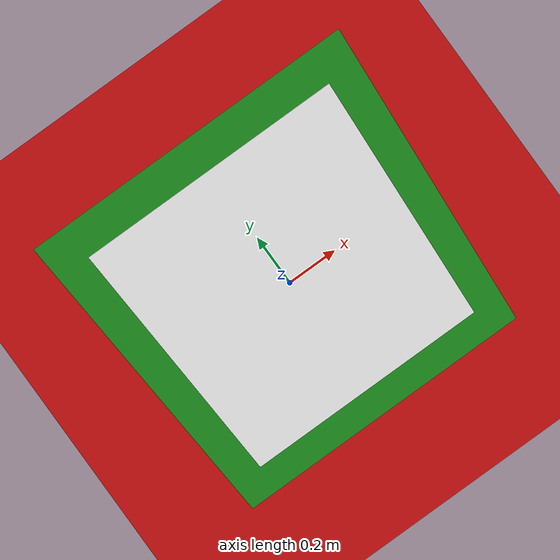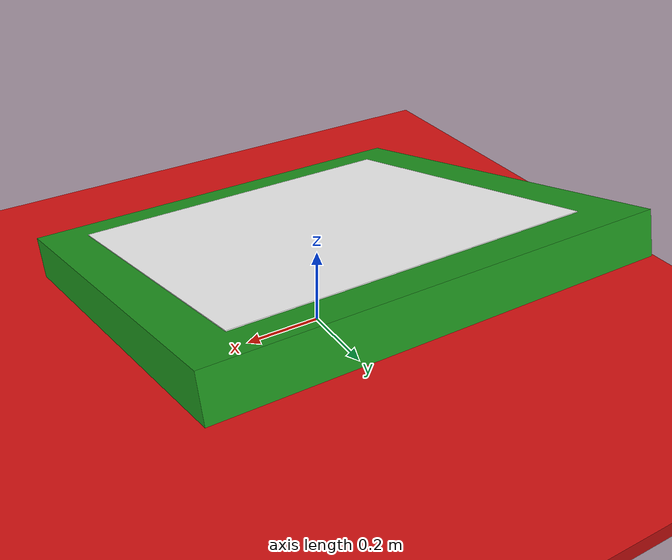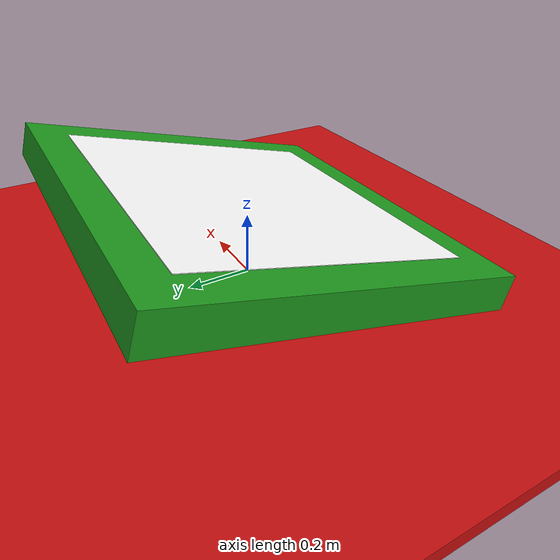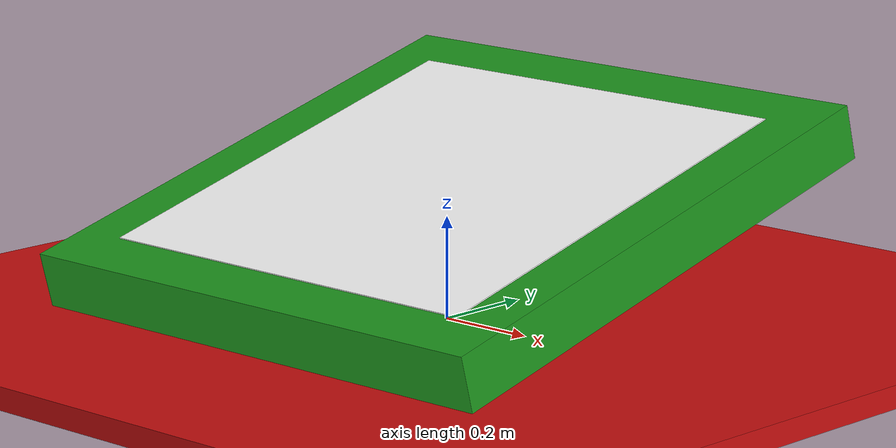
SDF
<?xml version='1.0' encoding='utf-8'?>
<sdf version="1.9">
  <world name="landing_pad">

    <spherical_coordinates>
      <surface_model>EARTH_WGS84</surface_model>
      <latitude_deg>47.397742</latitude_deg>
      <longitude_deg>8.545594</longitude_deg>
      <elevation>488.0</elevation>
      <heading_deg>0</heading_deg>
    </spherical_coordinates>

    <physics type="ode">
      <max_step_size>0.004</max_step_size>
      <real_time_factor>1.0</real_time_factor>
      <real_time_update_rate>250</real_time_update_rate>
    </physics>

    <atmosphere type="adiabatic" />
    <physics name="1ms" type="dart">
      <max_step_size>0.001</max_step_size>
      <real_time_factor>1.0</real_time_factor>
    </physics>

    <plugin filename="gz-sim-physics-system" name="gz::sim::systems::Physics" />
    <plugin filename="gz-sim-user-commands-system" name="gz::sim::systems::UserCommands" />
    <plugin filename="gz-sim-scene-broadcaster-system" name="gz::sim::systems::SceneBroadcaster" />
    <plugin filename="gz-sim-contact-system" name="gz::sim::systems::Contact" />

    <plugin filename="gz-sim-imu-system" name="gz::sim::systems::Imu" />
    <plugin filename="gz-sim-air-pressure-system" name="gz::sim::systems::AirPressure" />
    <plugin filename="gz-sim-magnetometer-system" name="gz::sim::systems::Magnetometer" />
    <plugin filename="gz-sim-navsat-system" name="gz::sim::systems::NavSat" />
    <plugin filename="gz-sim-sensors-system" name="gz::sim::systems::Sensors">
      <render_engine>ogre2</render_engine>
    </plugin>

    <scene>
      <ambient>0.6 0.6 0.6 1</ambient>
      <background>0.15 0.15 0.15 1</background>
      <shadows>true</shadows>
    </scene>

    <gravity>0 0 -9.81</gravity>
    <magnetic_field>6e-06 2.3e-05 -4.2e-05</magnetic_field>

    <light name="hall_sun" type="directional">
      <cast_shadows>true</cast_shadows>
      <pose>0.0 0.0 22.0 0 0 0</pose>
      <diffuse>0.8 0.8 0.8 1</diffuse>
      <specular>0.2 0.2 0.2 1</specular>
      <direction>0.1 0.1 -1</direction>
    </light>

    <!-- Floor -->
    <model name="arena_floor">
      <static>true</static><pose>0.0 0.0 0.0 0 0 0</pose>
      <link name="link">
        <collision name="col"><geometry><box><size>15.4 30.8 0.044</size></box></geometry></collision>
        <visual name="vis">
          <geometry><box><size>15.4 30.8 0.044</size></box></geometry>
          <material>
            <ambient>0.80 0.06 0.06 1</ambient>
            <diffuse>0.80 0.06 0.06 1</diffuse>
            <pbr><metal><roughness>0.8</roughness><metalness>0.0</metalness></metal></pbr>
          </material>
        </visual>
      </link>
    </model>

    <!-- Landing Platform -->
    <model name="landing_platform">
      <static>false</static>

      <link name="carriage">
        <pose>0.0 0.0 0.22 0 0 0</pose> <!-- Brought to center -->
        <inertial>
          <mass>4.0</mass>
          <inertia><ixx>0.1</ixx><iyy>0.1</iyy><izz>0.1</izz></inertia>
        </inertial>
      </link>

      <joint name="stroke_joint" type="prismatic">
        <parent>world</parent>
        <child>carriage</child>
        <axis>
          <xyz>0 1 0</xyz> <!-- Moving in Y direction -->
          <limit>
            <lower>-12.0</lower>
            <upper>12.0</upper>
          </limit>
          <dynamics>
            <spring_reference>4.0</spring_reference> <!-- Increased to create wider oscillation -->
            <spring_stiffness>5.0</spring_stiffness> <!-- Adjusted to make it smooth over the large distance -->
            <damping>0.0</damping>
            <friction>0.0</friction>
          </dynamics>
        </axis>
      </joint>

      <link name="base_link">
        <pose>0.0 0.0 0.22 0.2618 0 0</pose> <!-- Brought to center, tilted properly -->
        <inertial>
          <mass>1.0</mass>
          <inertia><ixx>0.1</ixx><iyy>0.1</iyy><izz>0.1</izz><ixy>0</ixy><ixz>0</ixz><iyz>0</iyz></inertia>
        </inertial>

        <collision name="col">
          <geometry><box><size>1.1 1.1 0.11</size></box></geometry> <!-- Same dimensions -->
        </collision>

        <visual name="vis_base">
          <geometry><box><size>1.1 1.1 0.11</size></box></geometry>
          <material><ambient>0.12 0.60 0.12 1</ambient><diffuse>0.12 0.60 0.12 1</diffuse></material>
        </visual>

        <collision name="aruco_id1_col">
          <pose>0.0 0.0 0.0572 0 0 -1.5708</pose> <!-- ArUco marker location -->
          <geometry><box><size>0.88 0.88 0.0022</size></box></geometry>
        </collision>
        <visual name="aruco_id1">
          <pose>0.0 0.0 0.0572 0 0 -1.5708</pose>
          <geometry><box><size>0.88 0.88 0.0022</size></box></geometry>
          <material>
            <diffuse>1.0 1.0 1.0 1.0</diffuse>
            <pbr>
              <metal>
                <albedo_map>model://materials/textures/aruco_marker_1.jpg</albedo_map> <!-- ArUco marker ID 1 texture map -->
                <roughness>0.5</roughness>
                <metalness>0.0</metalness>
              </metal>
            </pbr>
          </material>
        </visual>
      </link>

      <joint name="pitch_joint" type="revolute">
        <parent>carriage</parent>
        <child>base_link</child>
        <axis>
          <xyz>1 0 0</xyz> <!-- Pitch axis -->
          <limit>
            <lower>-1.151</lower>
            <upper>0.0</upper>
          </limit>
          <dynamics>
            <spring_reference>-0.2618</spring_reference> <!-- Same dynamics as imav2026_scaled.sdf -->
            <spring_stiffness>0.125</spring_stiffness>
            <damping>0.0</damping>
            <friction>0.0</friction>
          </dynamics>
        </axis>
      </joint>
    </model>

  </world>
</sdf>
